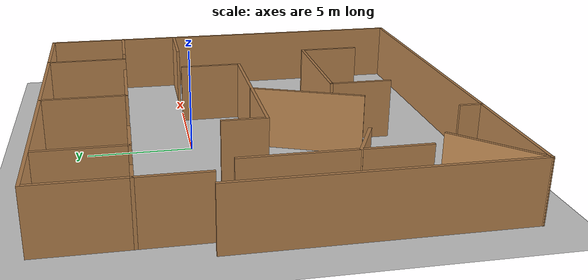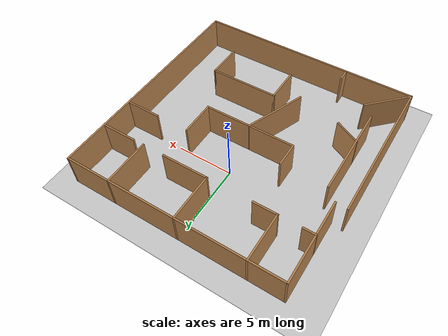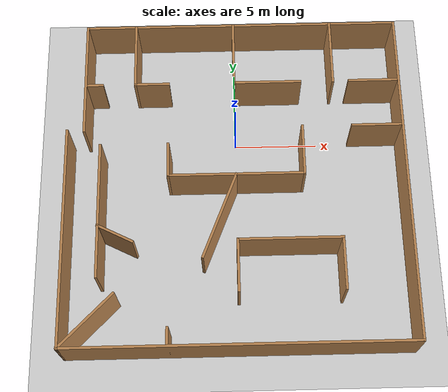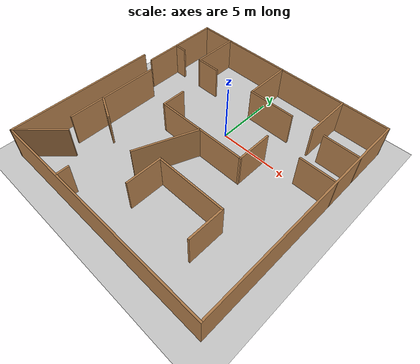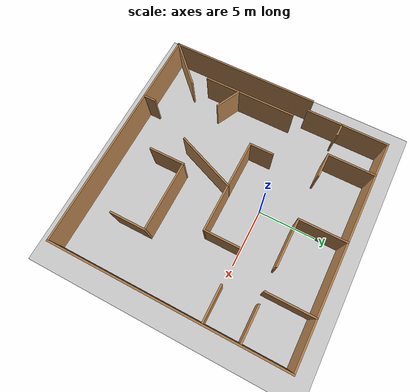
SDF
<sdf version="1.6">
 <world name="default">
  <light name="sun" type="directional">
   <pose>0 0 10 0 -0 0</pose>
   <diffuse>0.8 0.8 0.8 1</diffuse>
   <specular>0.2 0.2 0.2 1</specular>
   <attenuation>
    <range>1000</range>
    <constant>0.9</constant>
    <linear>0.01</linear>
    <quadratic>0.001</quadratic>
   </attenuation>
   <direction>-0.5 0.1 -0.9</direction>
  </light>
  <model name="ground_plane">
   <static>1</static>
   <link name="link">
    <collision name="collision">
     <geometry><plane><normal>0 0 1</normal><size>100 100</size></plane></geometry>
     <surface>
      <contact><collide_bitmask>65535</collide_bitmask></contact>
      <friction><ode><mu>100</mu><mu2>50</mu2></ode></friction>
     </surface>
    </collision>
    <visual name="visual">
     <cast_shadows>0</cast_shadows>
     <geometry><plane><normal>0 0 1</normal><size>100 100</size></plane></geometry>
     <material>
      <script><uri>file://media/materials/scripts/gazebo.material</uri><name>Gazebo/Grey</name></script>
     </material>
    </visual>
   </link>
  </model>
  <gravity>0 0 -9.8</gravity>
  <magnetic_field>6e-06 2.3e-05 -4.2e-05</magnetic_field>
  <atmosphere type="adiabatic"/>
  <physics name="default_physics" default="0" type="ode">
   <max_step_size>0.001</max_step_size>
   <real_time_factor>1</real_time_factor>
   <real_time_update_rate>1000</real_time_update_rate>
  </physics>
  <scene><ambient>0.4 0.4 0.4 1</ambient><background>0.7 0.7 0.7 1</background><shadows>1</shadows></scene>
  <spherical_coordinates>
   <surface_model>EARTH_WGS84</surface_model>
   <latitude_deg>0</latitude_deg>
   <longitude_deg>0</longitude_deg>
   <elevation>0</elevation>
   <heading_deg>0</heading_deg>
  </spherical_coordinates>
  <model name="ZY_WORLD2">
   <pose>-0.015532 -3.01553 0 0 -0 0</pose>
   <link name="Wall_1">
    <collision name="Wall_1_Collision">
     <geometry><box><size>20.15 0.15 3</size></box></geometry>
     <pose>0 0 1.5 0 -0 0</pose>
    </collision>
    <visual name="Wall_1_Visual">
     <pose>0 0 1.5 0 -0 0</pose>
     <geometry><box><size>20.15 0.15 3</size></box></geometry>
     <material>
      <script><uri>file://media/materials/scripts/gazebo.material</uri><name>Gazebo/Wood</name></script>
      <ambient>1 1 1 1</ambient>
     </material>
     <meta><layer>0</layer></meta>
    </visual>
    <pose>0.015532 -9.98447 0 0 -0 0</pose>
   </link>
   <link name="Wall_11">
    <collision name="Wall_11_Collision">
     <geometry><box><size>4.15 0.15 3</size></box></geometry>
     <pose>0 0 1.5 0 -0 0</pose>
    </collision>
    <visual name="Wall_11_Visual">
     <pose>0 0 1.5 0 -0 0</pose>
     <geometry><box><size>4.15 0.15 3</size></box></geometry>
     <material>
      <script><uri>file://media/materials/scripts/gazebo.material</uri><name>Gazebo/Wood</name></script>
      <ambient>1 1 1 1</ambient>
     </material>
     <meta><layer>0</layer></meta>
    </visual>
    <pose>0.015532 8.01553 0 0 -0 1.5708</pose>
   </link>
   <link name="Wall_13">
    <collision name="Wall_13_Collision">
     <geometry><box><size>4.15 0.15 3</size></box></geometry>
     <pose>0 0 1.5 0 -0 0</pose>
    </collision>
    <visual name="Wall_13_Visual">
     <pose>0 0 1.5 0 -0 0</pose>
     <geometry><box><size>4.15 0.15 3</size></box></geometry>
     <material>
      <script><uri>file://media/materials/scripts/gazebo.material</uri><name>Gazebo/Wood</name></script>
      <ambient>1 1 1 1</ambient>
     </material>
     <meta><layer>0</layer></meta>
    </visual>
    <pose>2.01553 6.01553 0 0 -0 0</pose>
   </link>
   <link name="Wall_15">
    <collision name="Wall_15_Collision">
     <geometry><box><size>2.15 0.15 3</size></box></geometry>
     <pose>0 0 1.5 0 -0 0</pose>
    </collision>
    <visual name="Wall_15_Visual">
     <pose>0 0 1.5 0 -0 0</pose>
     <geometry><box><size>2.15 0.15 3</size></box></geometry>
     <material>
      <script><uri>file://media/materials/scripts/gazebo.material</uri><name>Gazebo/Wood</name></script>
      <ambient>1 1 1 1</ambient>
     </material>
     <meta><layer>0</layer></meta>
    </visual>
    <pose>-4.98447 6.01553 0 0 -0 3.14159</pose>
   </link>
   <link name="Wall_17">
    <collision name="Wall_17_Collision">
     <geometry><box><size>4.15 0.15 3</size></box></geometry>
     <pose>0 0 1.5 0 -0 0</pose>
    </collision>
    <visual name="Wall_17_Visual">
     <pose>0 0 1.5 0 -0 0</pose>
     <geometry><box><size>4.15 0.15 3</size></box></geometry>
     <material>
      <script><uri>file://media/materials/scripts/gazebo.material</uri><name>Gazebo/Wood</name></script>
      <ambient>1 1 1 1</ambient>
     </material>
     <meta><layer>0</layer></meta>
    </visual>
    <pose>-5.98447 8.01553 0 0 -0 1.5708</pose>
   </link>
   <link name="Wall_19">
    <collision name="Wall_19_Collision">
     <geometry><box><size>13.15 0.15 3</size></box></geometry>
     <pose>0 0 1.5 0 -0 0</pose>
    </collision>
    <visual name="Wall_19_Visual">
     <pose>0 0 1.5 0 -0 0</pose>
     <geometry><box><size>13.15 0.15 3</size></box></geometry>
     <material>
      <script><uri>file://media/materials/scripts/gazebo.material</uri><name>Gazebo/Wood</name></script>
      <ambient>1 1 1 1</ambient>
     </material>
     <meta><layer>0</layer></meta>
    </visual>
    <pose>-9.98447 -3.48447 0 0 -0 -1.5708</pose>
   </link>
   <link name="Wall_2">
    <collision name="Wall_2_Collision">
     <geometry><box><size>20.15 0.15 3</size></box></geometry>
     <pose>0 0 1.5 0 -0 0</pose>
    </collision>
    <visual name="Wall_2_Visual">
     <pose>0 0 1.5 0 -0 0</pose>
     <geometry><box><size>20.15 0.15 3</size></box></geometry>
     <material>
      <script><uri>file://media/materials/scripts/gazebo.material</uri><name>Gazebo/Wood</name></script>
      <ambient>1 1 1 1</ambient>
     </material>
     <meta><layer>0</layer></meta>
    </visual>
    <pose>10.0155 0.015533 0 0 -0 1.5708</pose>
   </link>
   <link name="Wall_21">
    <collision name="Wall_21_Collision">
     <geometry><box><size>7.15 0.15 3</size></box></geometry>
     <pose>0 0 1.5 0 -0 0</pose>
    </collision>
    <visual name="Wall_21_Visual">
     <pose>0 0 1.5 0 -0 0</pose>
     <geometry><box><size>7.15 0.15 3</size></box></geometry>
     <material>
      <script><uri>file://media/materials/scripts/gazebo.material</uri><name>Gazebo/Wood</name></script>
      <ambient>1 1 1 1</ambient>
     </material>
     <meta><layer>0</layer></meta>
    </visual>
    <pose>-8.98447 6.51553 0 0 -0 1.5708</pose>
   </link>
   <link name="Wall_23">
    <collision name="Wall_23_Collision">
     <geometry><box><size>1.15 0.15 3</size></box></geometry>
     <pose>0 0 1.5 0 -0 0</pose>
    </collision>
    <visual name="Wall_23_Visual">
     <pose>0 0 1.5 0 -0 0</pose>
     <geometry><box><size>1.15 0.15 3</size></box></geometry>
     <material>
      <script><uri>file://media/materials/scripts/gazebo.material</uri><name>Gazebo/Wood</name></script>
      <ambient>1 1 1 1</ambient>
     </material>
     <meta><layer>0</layer></meta>
    </visual>
    <pose>-8.48447 6.01553 0 0 -0 3.14159</pose>
   </link>
   <link name="Wall_25">
    <collision name="Wall_25_Collision">
     <geometry><box><size>8.15 0.15 3</size></box></geometry>
     <pose>0 0 1.5 0 -0 0</pose>
    </collision>
    <visual name="Wall_25_Visual">
     <pose>0 0 1.5 0 -0 0</pose>
     <geometry><box><size>8.15 0.15 3</size></box></geometry>
     <material>
      <script><uri>file://media/materials/scripts/gazebo.material</uri><name>Gazebo/Wood</name></script>
      <ambient>1 1 1 1</ambient>
     </material>
     <meta><layer>0</layer></meta>
    </visual>
    <pose>-7.98447 -1.98447 0 0 -0 -1.5708</pose>
   </link>
   <link name="Wall_27">
    <collision name="Wall_27_Collision">
     <geometry><box><size>8.15 0.15 3</size></box></geometry>
     <pose>0 0 1.5 0 -0 0</pose>
    </collision>
    <visual name="Wall_27_Visual">
     <pose>0 0 1.5 0 -0 0</pose>
     <geometry><box><size>8.15 0.15 3</size></box></geometry>
     <material>
      <script><uri>file://media/materials/scripts/gazebo.material</uri><name>Gazebo/Wood</name></script>
      <ambient>1 1 1 1</ambient>
     </material>
     <meta><layer>0</layer></meta>
    </visual>
    <pose>0.015532 0.015533 0 0 -0 0</pose>
   </link>
   <link name="Wall_29">
    <collision name="Wall_29_Collision">
     <geometry><box><size>2.15 0.15 3</size></box></geometry>
     <pose>0 0 1.5 0 -0 0</pose>
    </collision>
    <visual name="Wall_29_Visual">
     <pose>0 0 1.5 0 -0 0</pose>
     <geometry><box><size>2.15 0.15 3</size></box></geometry>
     <material>
      <script><uri>file://media/materials/scripts/gazebo.material</uri><name>Gazebo/Wood</name></script>
      <ambient>1 1 1 1</ambient>
     </material>
     <meta><layer>0</layer></meta>
    </visual>
    <pose>-3.98447 1.01553 0 0 -0 -1.5708</pose>
   </link>
   <link name="Wall_3">
    <collision name="Wall_3_Collision">
     <geometry><box><size>19.15 0.15 3</size></box></geometry>
     <pose>0 0 1.5 0 -0 0</pose>
    </collision>
    <visual name="Wall_3_Visual">
     <pose>0 0 1.5 0 -0 0</pose>
     <geometry><box><size>19.15 0.15 3</size></box></geometry>
     <material>
      <script><uri>file://media/materials/scripts/gazebo.material</uri><name>Gazebo/Wood</name></script>
      <ambient>1 1 1 1</ambient>
     </material>
     <meta><layer>0</layer></meta>
    </visual>
    <pose>0.515532 10.0155 0 0 -0 3.14159</pose>
   </link>
   <link name="Wall_31">
    <collision name="Wall_31_Collision">
     <geometry><box><size>3.15 0.15 3</size></box></geometry>
     <pose>0 0 1.5 0 -0 0</pose>
    </collision>
    <visual name="Wall_31_Visual">
     <pose>0 0 1.5 0 -0 0</pose>
     <geometry><box><size>3.15 0.15 3</size></box></geometry>
     <material>
      <script><uri>file://media/materials/scripts/gazebo.material</uri><name>Gazebo/Wood</name></script>
      <ambient>1 1 1 1</ambient>
     </material>
     <meta><layer>0</layer></meta>
    </visual>
    <pose>4.01553 1.51553 0 0 -0 -1.5708</pose>
   </link>
   <link name="Wall_33">
    <collision name="Wall_33_Collision">
     <geometry><box><size>2.38607 0.15 3</size></box></geometry>
     <pose>0 0 1.5 0 -0 0</pose>
    </collision>
    <visual name="Wall_33_Visual">
     <pose>0 0 1.5 0 -0 0</pose>
     <geometry><box><size>2.38607 0.15 3</size></box></geometry>
     <material>
      <script><uri>file://media/materials/scripts/gazebo.material</uri><name>Gazebo/Wood</name></script>
      <ambient>1 1 1 1</ambient>
     </material>
     <meta><layer>0</layer></meta>
    </visual>
    <pose>-6.98447 -3.48447 0 0 -0 -0.463648</pose>
   </link>
   <link name="Wall_35">
    <collision name="Wall_35_Collision">
     <geometry><box><size>5.53517 0.15 3</size></box></geometry>
     <pose>0 0 1.5 0 -0 0</pose>
    </collision>
    <visual name="Wall_35_Visual">
     <pose>0 0 1.5 0 -0 0</pose>
     <geometry><box><size>5.53517 0.15 3</size></box></geometry>
     <material>
      <script><uri>file://media/materials/scripts/gazebo.material</uri><name>Gazebo/Wood</name></script>
      <ambient>1 1 1 1</ambient>
     </material>
     <meta><layer>0</layer></meta>
    </visual>
    <pose>-0.984468 -2.48447 0 0 -0 -1.9513</pose>
   </link>
   <link name="Wall_37">
    <collision name="Wall_37_Collision">
     <geometry><box><size>3.15 0.15 3</size></box></geometry>
     <pose>0 0 1.5 0 -0 0</pose>
    </collision>
    <visual name="Wall_37_Visual">
     <pose>0 0 1.5 0 -0 0</pose>
     <geometry><box><size>3.15 0.15 3</size></box></geometry>
     <material>
      <script><uri>file://media/materials/scripts/gazebo.material</uri><name>Gazebo/Wood</name></script>
      <ambient>1 1 1 1</ambient>
     </material>
     <meta><layer>0</layer></meta>
    </visual>
    <pose>0.015532 -5.48447 0 0 -0 -1.5708</pose>
   </link>
   <link name="Wall_39">
    <collision name="Wall_39_Collision">
     <geometry><box><size>6.15 0.15 3</size></box></geometry>
     <pose>0 0 1.5 0 -0 0</pose>
    </collision>
    <visual name="Wall_39_Visual">
     <pose>0 0 1.5 0 -0 0</pose>
     <geometry><box><size>6.15 0.15 3</size></box></geometry>
     <material>
      <script><uri>file://media/materials/scripts/gazebo.material</uri><name>Gazebo/Wood</name></script>
      <ambient>1 1 1 1</ambient>
     </material>
     <meta><layer>0</layer></meta>
    </visual>
    <pose>3.01553 -3.98447 0 0 -0 0</pose>
   </link>
   <link name="Wall_41">
    <collision name="Wall_41_Collision">
     <geometry><box><size>3.15 0.15 3</size></box></geometry>
     <pose>0 0 1.5 0 -0 0</pose>
    </collision>
    <visual name="Wall_41_Visual">
     <pose>0 0 1.5 0 -0 0</pose>
     <geometry><box><size>3.15 0.15 3</size></box></geometry>
     <material>
      <script><uri>file://media/materials/scripts/gazebo.material</uri><name>Gazebo/Wood</name></script>
      <ambient>1 1 1 1</ambient>
     </material>
     <meta><layer>0</layer></meta>
    </visual>
    <pose>6.01553 -5.48447 0 0 -0 -1.5708</pose>
   </link>
   <link name="Wall_43">
    <collision name="Wall_43_Collision">
     <geometry><box><size>1.15 0.15 3</size></box></geometry>
     <pose>0 0 1.5 0 -0 0</pose>
    </collision>
    <visual name="Wall_43_Visual">
     <pose>0 0 1.5 0 -0 0</pose>
     <geometry><box><size>1.15 0.15 3</size></box></geometry>
     <material>
      <script><uri>file://media/materials/scripts/gazebo.material</uri><name>Gazebo/Wood</name></script>
      <ambient>1 1 1 1</ambient>
     </material>
     <meta><layer>0</layer></meta>
    </visual>
    <pose>-3.98447 -9.48447 0 0 -0 1.5708</pose>
   </link>
   <link name="Wall_45">
    <collision name="Wall_45_Collision">
     <geometry><box><size>4.39264 0.15 3</size></box></geometry>
     <pose>0 0 1.5 0 -0 0</pose>
    </collision>
    <visual name="Wall_45_Visual">
     <pose>0 0 1.5 0 -0 0</pose>
     <geometry><box><size>4.39264 0.15 3</size></box></geometry>
     <material>
      <script><uri>file://media/materials/scripts/gazebo.material</uri><name>Gazebo/Wood</name></script>
      <ambient>1 1 1 1</ambient>
     </material>
     <meta><layer>0</layer></meta>
    </visual>
    <pose>-8.48447 -8.48447 0 0 -0 0.785398</pose>
   </link>
   <link name="Wall_5">
    <collision name="Wall_5_Collision">
     <geometry><box><size>3.15 0.15 3</size></box></geometry>
     <pose>0 0 1.5 0 -0 0</pose>
    </collision>
    <visual name="Wall_5_Visual">
     <pose>0 0 1.5 0 -0 0</pose>
     <geometry><box><size>3.15 0.15 3</size></box></geometry>
     <material>
      <script><uri>file://media/materials/scripts/gazebo.material</uri><name>Gazebo/Wood</name></script>
      <ambient>1 1 1 1</ambient>
     </material>
     <meta><layer>0</layer></meta>
    </visual>
    <pose>8.51553 6.01553 0 0 -0 0</pose>
   </link>
   <link name="Wall_7">
    <collision name="Wall_7_Collision">
     <geometry><box><size>3.15 0.15 3</size></box></geometry>
     <pose>0 0 1.5 0 -0 0</pose>
    </collision>
    <visual name="Wall_7_Visual">
     <pose>0 0 1.5 0 -0 0</pose>
     <geometry><box><size>3.15 0.15 3</size></box></geometry>
     <material>
      <script><uri>file://media/materials/scripts/gazebo.material</uri><name>Gazebo/Wood</name></script>
      <ambient>1 1 1 1</ambient>
     </material>
     <meta><layer>0</layer></meta>
    </visual>
    <pose>8.51553 3.01553 0 0 -0 0</pose>
   </link>
   <link name="Wall_9">
    <collision name="Wall_9_Collision">
     <geometry><box><size>4.15 0.15 3</size></box></geometry>
     <pose>0 0 1.5 0 -0 0</pose>
    </collision>
    <visual name="Wall_9_Visual">
     <pose>0 0 1.5 0 -0 0</pose>
     <geometry><box><size>4.15 0.15 3</size></box></geometry>
     <material>
      <script><uri>file://media/materials/scripts/gazebo.material</uri><name>Gazebo/Wood</name></script>
      <ambient>1 1 1 1</ambient>
     </material>
     <meta><layer>0</layer></meta>
    </visual>
    <pose>6.01553 8.01553 0 0 -0 1.5708</pose>
   </link>
   <static>1</static>
  </model>
 </world>
</sdf>
